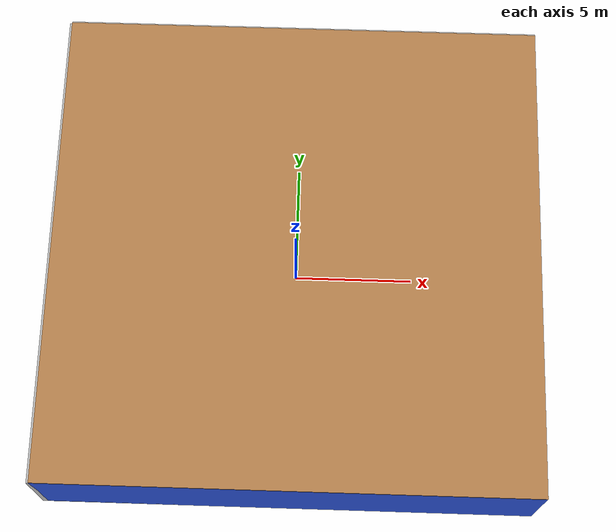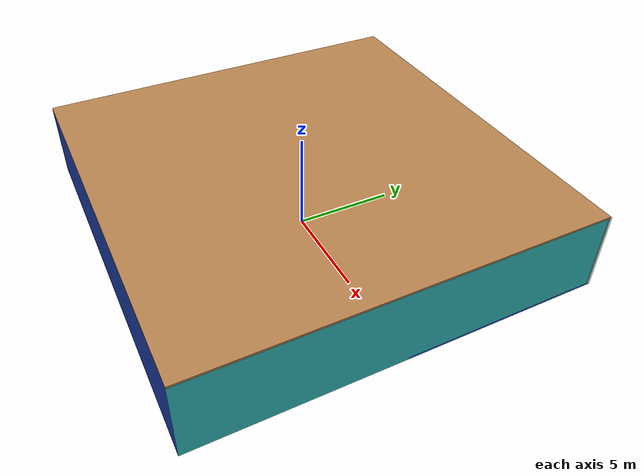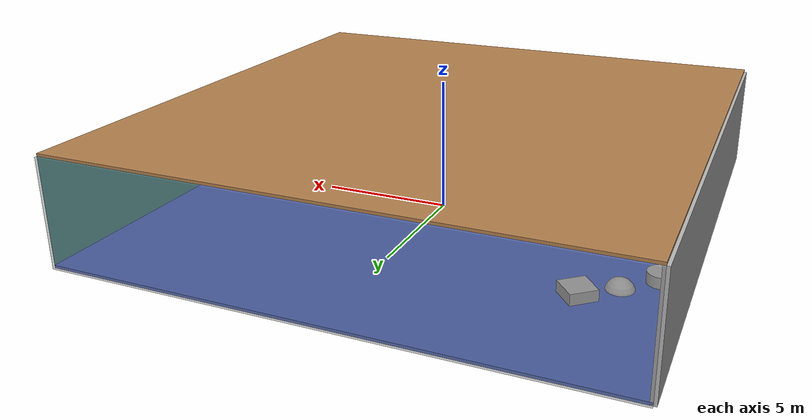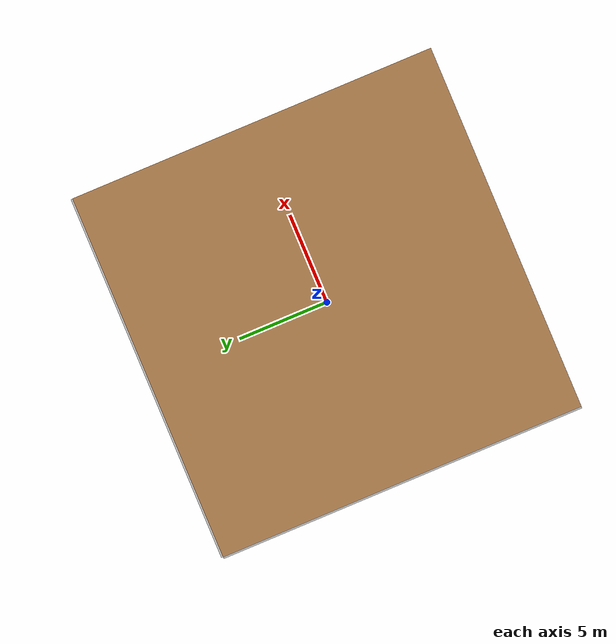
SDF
<sdf version="1.4">
 <world name="default">
  <physics type="ode">
   <max_step_size>0.001</max_step_size>
   <real_time_factor>1</real_time_factor>
   <real_time_update_rate>1000</real_time_update_rate>
   <gravity>0 0 -9.8</gravity>
  </physics>
  <scene><ambient>0.4 0.4 0.4 1</ambient><background>0.7 0.7 0.7 1</background><shadows>1</shadows></scene>
  <model name="Surrounding">
   <static>1</static>
   <link name="Ceiling">
    <collision name="Ceiling_Collision"><geometry><box><size>20 20 0.1</size></box></geometry></collision>
    <visual name="Ceiling_Visual">
     <geometry><box><size>20 20 0.1</size></box></geometry>
     <material>
      <script><uri>file://media/materials/scripts/gazebo.material</uri><name>Gazebo/Wood</name></script>
     </material>
    </visual>
    <pose>0 0 4.05 0 0 0</pose>
   </link>
   <link name="Wall_South">
    <collision name="Wall_South_Collision">
     <geometry><box><size>20 0 4</size></box></geometry>
     <pose>0 0 2 0 -0 0</pose>
    </collision>
    <visual name="Wall_South_Visual">
     <pose>0 0 2 0 -0 0</pose>
     <geometry><box><size>20 0 4</size></box></geometry>
     <material>
      <script><uri>file://media/materials/scripts/gazebo.material</uri><name>Gazebo/Blue</name></script>
     </material>
    </visual>
    <velocity_decay><linear>0</linear><angular>0</angular></velocity_decay>
    <pose>0 -10 0 0 -0 0</pose>
   </link>
   <link name="Wall_East">
    <collision name="Wall_21_Collision">
     <geometry><box><size>20 0 4</size></box></geometry>
     <pose>0 0 2 0 -0 0</pose>
    </collision>
    <visual name="Wall_21_Visual">
     <pose>0 0 2 0 -0 0</pose>
     <geometry><box><size>20 0 4</size></box></geometry>
     <material>
      <script>
       <uri>file://media/materials/scripts/gazebo.material</uri>
       <name>Gazebo/TurquoiseGlowOutline</name>
      </script>
     </material>
    </visual>
    <velocity_decay><linear>0</linear><angular>0</angular></velocity_decay>
    <pose>10 0 0 0 -0 1.5708</pose>
   </link>
   <link name="Wall_North">
    <collision name="Wall_22_Collision">
     <geometry><box><size>20 0.2 4</size></box></geometry>
     <pose>0 0 2 0 -0 0</pose>
    </collision>
    <visual name="Wall_22_Visual">
     <pose>0 0 2 0 -0 0</pose>
     <geometry><box><size>20 0.2 4</size></box></geometry>
     <material>
      <script><uri>file://media/materials/scripts/gazebo.material</uri><name>Gazebo/GreyTransparent</name></script>
     </material>
    </visual>
    <velocity_decay><linear>0</linear><angular>0</angular></velocity_decay>
    <pose>0 10 0 0 -0 0</pose>
   </link>
   <link name="Wall_West">
    <collision name="Wall_23_Collision">
     <geometry><box><size>20 0.2 4</size></box></geometry>
     <pose>0 0 2 0 -0 0</pose>
    </collision>
    <visual name="Wall_23_Visual">
     <pose>0 0 2 0 -0 0</pose>
     <geometry><box><size>20 0.2 4</size></box></geometry>
     <material>
      <script><uri>file://media/materials/scripts/gazebo.material</uri><name>Gazebo/Pioneer2Body</name></script>
     </material>
    </visual>
    <velocity_decay><linear>0</linear><angular>0</angular></velocity_decay>
    <pose>-10 0 0 0 0 -1.5708</pose>
   </link>
   <link name="Ground_link">
    <collision name="collision">
     <pose>0 0 .05 0 -0 0</pose>
     <geometry><box><size>20 20 0.1</size></box></geometry>
    </collision>
    <visual name="visual">
     <pose>0 0 .05 0 -0 0</pose>
     <geometry><box><size>20 20 0.1</size></box></geometry>
     <material>
      <script><uri>file://media/materials/scripts/gazebo.material</uri><name>Gazebo/Blue</name></script>
     </material>
    </visual>
   </link>
   <static>1</static>
  </model>
  <spherical_coordinates>
   <surface_model>EARTH_WGS84</surface_model>
   <latitude_deg>0</latitude_deg>
   <longitude_deg>0</longitude_deg>
   <elevation>0</elevation>
   <heading_deg>0</heading_deg>
  </spherical_coordinates>
  <light name="lightball_0" type="diffuse">
   <diffuse>0.8 0.8 0.8 1</diffuse>
   <specular>0.2 0.2 0.2 1</specular>
   <attenuation>
    <range>100</range>
    <constant>0.7</constant>
    <linear>0.01</linear>
    <quadratic>0.001</quadratic>
   </attenuation>
   <direction>-0.5 0.1 -0.9</direction>
   <pose>-0.48828855997 -9.94496102387 2.65289384771 0 0 0</pose>
  </light>
  <light name="lightball_1" type="diffuse">
   <diffuse>0.8 0.8 0.8 1</diffuse>
   <specular>0.2 0.2 0.2 1</specular>
   <attenuation>
    <range>100</range>
    <constant>0.7</constant>
    <linear>0.01</linear>
    <quadratic>0.001</quadratic>
   </attenuation>
   <direction>-0.5 0.1 -0.9</direction>
   <pose>-6.98432990825 -5.03544029966 1.4655550061 0 0 0</pose>
  </light>
  <light name="lightball_2" type="diffuse">
   <diffuse>0.8 0.8 0.8 1</diffuse>
   <specular>0.2 0.2 0.2 1</specular>
   <attenuation>
    <range>100</range>
    <constant>0.7</constant>
    <linear>0.01</linear>
    <quadratic>0.001</quadratic>
   </attenuation>
   <direction>-0.5 0.1 -0.9</direction>
   <pose>-5.0821414408 -9.85691834098 3.21483846274 0 0 0</pose>
  </light>
  <light name="lightball_3" type="diffuse">
   <diffuse>0.8 0.8 0.8 1</diffuse>
   <specular>0.2 0.2 0.2 1</specular>
   <attenuation>
    <range>100</range>
    <constant>0.7</constant>
    <linear>0.01</linear>
    <quadratic>0.001</quadratic>
   </attenuation>
   <direction>-0.5 0.1 -0.9</direction>
   <pose>-8.14282438217 4.1887473151 1.32241455749 0 0 0</pose>
  </light>
  <light name="lightball_4" type="diffuse">
   <diffuse>0.8 0.8 0.8 1</diffuse>
   <specular>0.2 0.2 0.2 1</specular>
   <attenuation>
    <range>100</range>
    <constant>0.7</constant>
    <linear>0.01</linear>
    <quadratic>0.001</quadratic>
   </attenuation>
   <direction>-0.5 0.1 -0.9</direction>
   <pose>0.0659377248135 -5.43086783185 1.25058091255 0 0 0</pose>
  </light>
  <light name="lightball_5" type="diffuse">
   <diffuse>0.8 0.8 0.8 1</diffuse>
   <specular>0.2 0.2 0.2 1</specular>
   <attenuation>
    <range>100</range>
    <constant>0.7</constant>
    <linear>0.01</linear>
    <quadratic>0.001</quadratic>
   </attenuation>
   <direction>-0.5 0.1 -0.9</direction>
   <pose>-2.99951352417 3.01321300011 3.16343507194 0 0 0</pose>
  </light>
  <light name="lightball_6" type="diffuse">
   <diffuse>0.8 0.8 0.8 1</diffuse>
   <specular>0.2 0.2 0.2 1</specular>
   <attenuation>
    <range>100</range>
    <constant>0.7</constant>
    <linear>0.01</linear>
    <quadratic>0.001</quadratic>
   </attenuation>
   <direction>-0.5 0.1 -0.9</direction>
   <pose>-8.35047278177 8.94061375835 0.73633621432 0 0 0</pose>
  </light>
  <light name="lightball_7" type="diffuse">
   <diffuse>0.8 0.8 0.8 1</diffuse>
   <specular>0.2 0.2 0.2 1</specular>
   <attenuation>
    <range>100</range>
    <constant>0.7</constant>
    <linear>0.01</linear>
    <quadratic>0.001</quadratic>
   </attenuation>
   <direction>-0.5 0.1 -0.9</direction>
   <pose>-1.35298597151 -4.58188175938 3.3323105682 0 0 0</pose>
  </light>
  <include>
   <uri>model://textured_shapes</uri>
   <pose>-7.91110758903 4.34570730293 0 0 0 2.27403458152</pose>
  </include>
  <include>
   <uri>model://robocup_3Dsim_goal</uri>
   <pose>-3.76292463999 -3.81099634432 0 0 0 1.04852049555</pose>
  </include>
  <include><uri>model://cabinet</uri><pose>1.07665914271 -4.57217727316 0 0 0 1.16310599096</pose></include>
  <include>
   <uri>model://textured_shapes</uri>
   <pose>7.79248546797 -7.74158771809 0 0 0 0.903055221014</pose>
  </include>
 </world>
</sdf>

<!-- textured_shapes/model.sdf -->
<sdf version="1.6">
  <model name="textured_shapes">
    <pose>0 0 0.5 0 0 0</pose>
    <link name="box">
      <pose>0 -1.5 0 0 0 0</pose>
      <collision name="collision">
        <geometry>
          <box>
            <size>1 1 1</size>
          </box>
        </geometry>
      </collision>
      <visual name="visual">
        <geometry>
          <box>
            <size>1 1 1</size>
          </box>
        </geometry>
        <material>
          <script>
            <uri>model://../model_source/models/textured_shapes/materials/scripts</uri>
            <uri>model://../model_source/models/textured_shapes/materials/textures</uri>
            <name>TexturedShape/Squares</name>
          </script>
        </material>
      </visual>
    </link>
    <link name="sphere">
      <collision name="collision">
        <geometry>
          <sphere>
            <radius>0.5</radius>
          </sphere>
        </geometry>
      </collision>
      <visual name="visual">
        <geometry>
          <sphere>
            <radius>0.5</radius>
          </sphere>
        </geometry>
        <material>
          <script>
            <uri>model://../model_source/models/textured_shapes/materials/scripts</uri>
            <uri>model://../model_source/models/textured_shapes/materials/textures</uri>
            <name>TexturedShape/Squares</name>
          </script>
        </material>
      </visual>
    </link>
    <link name="cylinder">
      <pose>0 1.5 0 0 0 0</pose>
      <collision name="collision">
        <geometry>
          <cylinder>
            <radius>0.5</radius>
            <length>1</length>
          </cylinder>
        </geometry>
      </collision>
      <visual name="visual">
        <geometry>
          <cylinder>
            <radius>0.5</radius>
            <length>1</length>
          </cylinder>
        </geometry>
        <material>
          <script>
            <uri>model://../model_source/models/textured_shapes/materials/scripts</uri>
            <uri>model://../model_source/models/textured_shapes/materials/textures</uri>
            <name>TexturedShape/Squares</name>
          </script>
        </material>
      </visual>
    </link>
  </model>
</sdf>

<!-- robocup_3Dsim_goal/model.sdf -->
<sdf version="1.5">
  <model name="robocup_3d_goal">
    <static>true</static>
    <link name="left_post">
      <pose>0 1.05 0.45 0 0 0</pose>
      <collision name="collision">
        <geometry>
          <cylinder>
            <radius>0.05</radius>
            <length>0.9</length>
          </cylinder>
        </geometry>
      </collision>
      <visual name="visual">
        <geometry>
          <cylinder>
            <radius>0.05</radius>
            <length>0.9</length>
          </cylinder>
        </geometry>
        <material>
          <script>
            <uri>file://media/materials/scripts/gazebo.material</uri>
            <name>Gazebo/ZincYellow</name>
          </script>
        </material>
      </visual>
    </link>
    <link name="left_support_horiz_lower">
      <pose>0.30 1.05 0.01 0 0 0</pose>
      <collision name="collision">
        <geometry>
          <box>
            <size>0.50 0.02 0.02</size>
          </box>
        </geometry>
      </collision>
      <visual name="visual">
        <geometry>
          <box>
            <size>0.50 0.02 0.02</size>
          </box>
        </geometry>
        <material>
          <script>
            <uri>file://media/materials/scripts/gazebo.material</uri>
            <name>Gazebo/White</name>
          </script>
        </material>
      </visual>
    </link>
    <link name="left_support_horiz_upper">
      <pose>0.30 1.05 0.79 0 0 0</pose>
      <collision name="collision">
        <geometry>
          <box>
            <size>0.50 0.02 0.02</size>
          </box>
        </geometry>
      </collision>
      <visual name="visual">
        <geometry>
          <box>
            <size>0.50 0.02 0.02</size>
          </box>
        </geometry>
        <material>
          <script>
            <uri>file://media/materials/scripts/gazebo.material</uri>
            <name>Gazebo/White</name>
          </script>
        </material>
      </visual>
    </link>
    <link name="left_support_vertical">
      <pose>0.56 1.05 0.4 0 1.5708 0</pose>
      <collision name="collision">
        <geometry>
          <box>
            <size>0.80 0.02 0.02</size>
          </box>
        </geometry>
      </collision>
      <visual name="visual">
        <geometry>
          <box>
            <size>0.80 0.02 0.02</size>
          </box>
        </geometry>
        <material>
          <script>
            <uri>file://media/materials/scripts/gazebo.material</uri>
            <name>Gazebo/White</name>
          </script>
        </material>
      </visual>
    </link>
    <link name="right_support_horiz_lower">
      <pose>0.30 -1.05 0.01 0 0 0</pose>
      <collision name="collision">
        <geometry>
          <box>
            <size>0.50 0.02 0.02</size>
          </box>
        </geometry>
      </collision>
      <visual name="visual">
        <geometry>
          <box>
            <size>0.50 0.02 0.02</size>
          </box>
        </geometry>
        <material>
          <script>
            <uri>file://media/materials/scripts/gazebo.material</uri>
            <name>Gazebo/White</name>
          </script>
        </material>
      </visual>
    </link>
    <link name="right_support_horiz_upper">
      <pose>0.30 -1.05 0.79 0 0 0</pose>
      <collision name="collision">
        <geometry>
          <box>
            <size>0.50 0.02 0.02</size>
          </box>
        </geometry>
      </collision>
      <visual name="visual">
        <geometry>
          <box>
            <size>0.50 0.02 0.02</size>
          </box>
        </geometry>
        <material>
          <script>
            <uri>file://media/materials/scripts/gazebo.material</uri>
            <name>Gazebo/White</name>
          </script>
        </material>
      </visual>
    </link>
    <link name="right_support_vertical">
      <pose>0.56 -1.05 0.4 0 1.5708 0</pose>
      <collision name="collision">
        <geometry>
          <box>
            <size>0.80 0.02 0.02</size>
          </box>
        </geometry>
      </collision>
      <visual name="visual">
        <geometry>
          <box>
            <size>0.80 0.02 0.02</size>
          </box>
        </geometry>
        <material>
          <script>
            <uri>file://media/materials/scripts/gazebo.material</uri>
            <name>Gazebo/White</name>
          </script>
        </material>
      </visual>
    </link>
    <link name="center_support_horiz_lower">
      <pose>0.56 0 0.01 0 1.5708 0</pose>
      <collision name="collision">
        <geometry>
          <box>
            <size>0.02 2.08 0.02</size>
          </box>
        </geometry>
      </collision>
      <visual name="visual">
        <geometry>
          <box>
            <size>0.02 2.08 0.02</size>
          </box>
        </geometry>
        <material>
          <script>
            <uri>file://media/materials/scripts/gazebo.material</uri>
            <name>Gazebo/White</name>
          </script>
        </material>
      </visual>
    </link>
    <link name="center_support_horiz_upper">
      <pose>0.56 0 0.79 0 1.5708 0</pose>
      <collision name="collision">
        <geometry>
          <box>
            <size>0.02 2.08 0.02</size>
          </box>
        </geometry>
      </collision>
      <visual name="visual">
        <geometry>
          <box>
            <size>0.02 2.08 0.02</size>
          </box>
        </geometry>
        <material>
          <script>
            <uri>file://media/materials/scripts/gazebo.material</uri>
            <name>Gazebo/White</name>
          </script>
        </material>
      </visual>
    </link>
    <link name="right_post">
      <pose>0 -1.05 0.45 0 0 0</pose>
      <collision name="collision">
        <geometry>
          <cylinder>
            <radius>0.05</radius>
            <length>0.9</length>
          </cylinder>
        </geometry>
      </collision>
      <visual name="visual">
        <geometry>
          <cylinder>
            <radius>0.05</radius>
            <length>0.9</length>
          </cylinder>
        </geometry>
        <material>
          <script>
            <uri>file://media/materials/scripts/gazebo.material</uri>
            <name>Gazebo/ZincYellow</name>
          </script>
        </material>
      </visual>
    </link>
    <link name="crossbar">
      <pose>0 0 0.85 1.57 1.57 0</pose>
      <collision name="collision">
        <geometry>
          <cylinder>
            <radius>0.05</radius>
            <length>2.0</length>
          </cylinder>
        </geometry>
      </collision>
      <visual name="visual">
        <geometry>
          <cylinder>
            <radius>0.05</radius>
            <length>2.0</length>
          </cylinder>
        </geometry>
        <material>
          <script>
            <uri>file://media/materials/scripts/gazebo.material</uri>
            <name>Gazebo/ZincYellow</name>
          </script>
        </material>
      </visual>
    </link>
    <link name="center_net">
      <pose>0.56 0 0.40 0 0 0</pose>
      <collision name="collision">
        <geometry>
          <box>
            <size>0.01 2.1 0.80</size>
          </box>
        </geometry>
      </collision>
      <visual name="visual">
        <geometry>
          <box>
            <size>0.01 2.1 0.80</size>
          </box>
        </geometry>
        <material>
          <script>
            <uri>model://../model_source/models/robocup09_spl_field/materials/scripts/</uri>
            <uri>model://../model_source/models/robocup09_spl_field/materials/textures/</uri>
            <name>RoboCup/Net</name>
          </script>
        </material>
      </visual>
    </link>
    <link name="left_net">
      <pose>0.30 1.05 0.40 0 0 0</pose>
      <collision name="collision">
        <geometry>
          <box>
            <size>0.50 0.01 0.76</size>
          </box>
        </geometry>
      </collision>
      <visual name="visual">
        <geometry>
          <box>
            <size>0.50 0.01 0.76</size>
          </box>
        </geometry>
        <material>
          <script>
            <uri>model://../model_source/models/robocup09_spl_field/materials/scripts/</uri>
            <uri>model://../model_source/models/robocup09_spl_field/materials/textures/</uri>
            <name>RoboCup/Net</name>
          </script>
        </material>
      </visual>
    </link>
    <link name="right_net">
      <pose>0.30 -1.05 0.40 0 0 0</pose>
      <collision name="collision">
        <geometry>
          <box>
            <size>0.50 0.01 0.76</size>
          </box>
        </geometry>
      </collision>
      <visual name="visual">
        <geometry>
          <box>
            <size>0.50 0.01 0.76</size>
          </box>
        </geometry>
        <material>
          <script>
            <uri>model://../model_source/models/robocup09_spl_field/materials/scripts/</uri>
            <uri>model://../model_source/models/robocup09_spl_field/materials/textures/</uri>
            <name>RoboCup/Net</name>
          </script>
        </material>
      </visual>
    </link>
  </model>
</sdf>

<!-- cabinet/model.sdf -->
<sdf version="1.5">
  <model name="cabinet">
    <static>true</static>
    <link name="cabinet_bottom_plate">
      <inertial>
        <pose>0 0 -1 0 0 0</pose>
        <inertia>
          <ixx>2.050000</ixx>
          <ixy>0</ixy>
          <ixz>0</ixz>
          <iyy>2.050000</iyy>
          <iyz>0</iyz>
          <izz>2.050000</izz>
        </inertia>
        <mass>25.000000</mass>
      </inertial>
      <collision name="cabinet_bottom_plate_geom">
        <pose>0 0 0.010000 0 0 0</pose>
        <geometry>
          <box>
            <size>0.450000 0.450000 0.020000</size>
          </box>
        </geometry>
      </collision>
      <visual name="cabinet_bottom_plate_geom_visual">
        <pose>0 0 0.010000 0 0 0</pose>
        <geometry>
          <box>
            <size>0.450000 0.450000 0.020000</size>
          </box>
        </geometry>
        <material>
          <script>
            <uri>model://media/materials/scripts/gazebo.material</uri>
            <name>Gazebo/Wood</name>
          </script>
        </material>
      </visual>
      <collision name="cabinet_bottom_plate_geom_cabinet_back_plate">
        <pose>0.235000 0 0.510000 0 0 0</pose>
        <geometry>
          <box>
            <size>0.020000 0.450000 1.020000</size>
          </box>
        </geometry>
      </collision>
      <visual name="cabinet_bottom_plate_geom_cabinet_back_plate_visual">
        <pose>0.235000 0 0.510000 0 0 0</pose>
        <geometry>
          <box>
            <size>0.020000 0.450000 1.020000</size>
          </box>
        </geometry>
        <material>
          <script>
            <uri>model://media/materials/scripts/gazebo.material</uri>
            <name>Gazebo/Wood</name>
          </script>
        </material>
      </visual>
      <collision name="cabinet_bottom_plate_geom_cabinet_left_plate">
        <pose>0 0.235000 0.510000 0 0 0</pose>
        <geometry>
          <box>
            <size>0.450000 0.020000 1.020000</size>
          </box>
        </geometry>
      </collision>
      <visual name="cabinet_bottom_plate_geom_cabinet_left_plate_visual">
        <pose>0 0.235000 0.510000 0 0 0</pose>
        <geometry>
          <box>
            <size>0.450000 0.020000 1.020000</size>
          </box>
        </geometry>
        <material>
          <script>
            <uri>model://media/materials/scripts/gazebo.material</uri>
            <name>Gazebo/Wood</name>
          </script>
        </material>
      </visual>
      <collision name="cabinet_bottom_plate_geom_cabinet_middle_plate">
        <pose>0 0 0.510000 0 0 0</pose>
        <geometry>
          <box>
            <size>0.450000 0.450000 0.020000</size>
          </box>
        </geometry>
      </collision>
      <visual name="cabinet_bottom_plate_geom_cabinet_middle_plate_visual">
        <pose>0 0 0.510000 0 0 0</pose>
        <geometry>
          <box>
            <size>0.450000 0.450000 0.020000</size>
          </box>
        </geometry>
        <material>
          <script>
            <uri>model://media/materials/scripts/gazebo.material</uri>
            <name>Gazebo/Wood</name>
          </script>
        </material>
      </visual>
      <collision name="cabinet_bottom_plate_geom_cabinet_right_plate">
        <pose>0 -0.235000 0.510000 0 0 0</pose>
        <geometry>
          <box>
            <size>0.450000 0.020000 1.020000</size>
          </box>
        </geometry>
      </collision>
      <visual name="cabinet_bottom_plate_geom_cabinet_right_plate_visual">
        <pose>0 -0.235000 0.510000 0 0 0</pose>
        <geometry>
          <box>
            <size>0.450000 0.020000 1.020000</size>
          </box>
        </geometry>
        <material>
          <script>
            <uri>model://media/materials/scripts/gazebo.material</uri>
            <name>Gazebo/Wood</name>
          </script>
        </material>
      </visual>
      <collision name="cabinet_bottom_plate_geom_cabinet_top_plate">
        <pose>0 0 1.010000 0 0 0</pose>
        <geometry>
          <box>
            <size>0.450000 0.450000 0.020000</size>
          </box>
        </geometry>
      </collision>
      <visual name="cabinet_bottom_plate_geom_cabinet_top_plate_visual">
        <pose>0 0 1.010000 0 0 0</pose>
        <geometry>
          <box>
            <size>0.450000 0.450000 0.020000</size>
          </box>
        </geometry>
        <material>
          <script>
            <uri>model://media/materials/scripts/gazebo.material</uri>
            <name>Gazebo/Wood</name>
          </script>
        </material>
      </visual>
    </link>
  </model>
</sdf>
